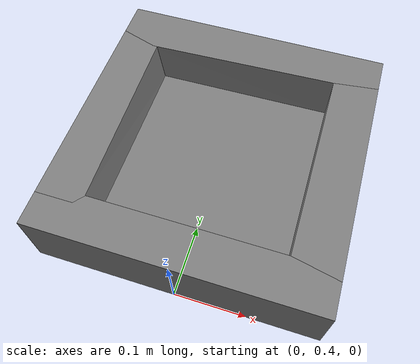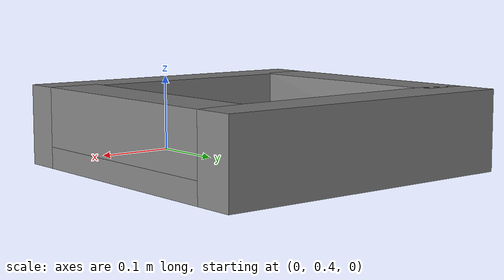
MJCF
<?xml version="1.0" ?>
<mujoco>
   <asset>
      <mesh name="basket003" scale="2 1 1" file="basket/basket003.stl"/>
      <mesh name="basket000" scale="2 1 1" file="basket/basket000.stl"/>
      <mesh name="basket001" scale="2 1 1" file="basket/basket001.stl"/>
      <mesh name="basket002" scale="2 1 1" file="basket/basket002.stl"/>
      <mesh name="basket004" scale="2 1 1" file="basket/basket004.stl"/>
   </asset>
   <worldbody>
      <body name="basket_whole" pos="0.0 0.6 0" quat="1.0 0 0 0">
         <freejoint name="free_joint_basket"/>
         <inertial pos="0 0 0" mass="2.0" diaginertia="0.1 0.1 0.1"/>
         <geom name="basket003" type="mesh" mesh="basket003" pos="0 0 0" conaffinity="1" contype="1"/>
         <geom name="basket000" type="mesh" mesh="basket000" pos="0 0 0" conaffinity="1" contype="1"/>
         <geom name="basket001" type="mesh" mesh="basket001" pos="0 0 0" conaffinity="1" contype="1"/>
         <geom name="basket002" type="mesh" mesh="basket002" pos="0 0 0" conaffinity="1" contype="1"/>
         <geom name="basket004" type="mesh" mesh="basket004" pos="0 0 0" conaffinity="1" contype="1"/>
      </body>
   </worldbody>
</mujoco>
